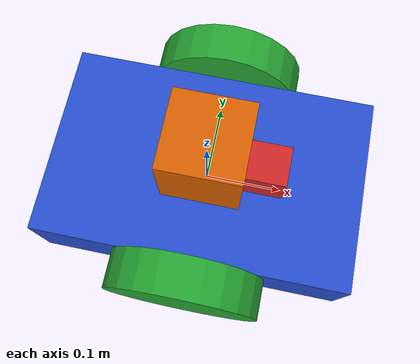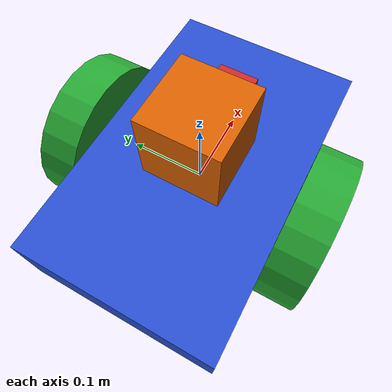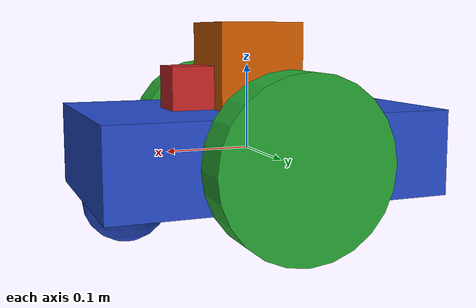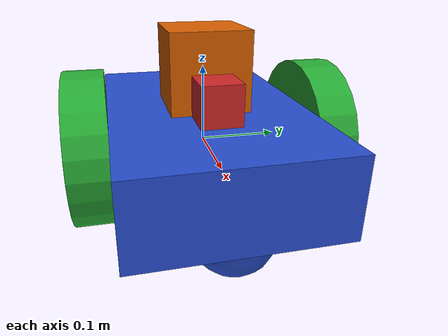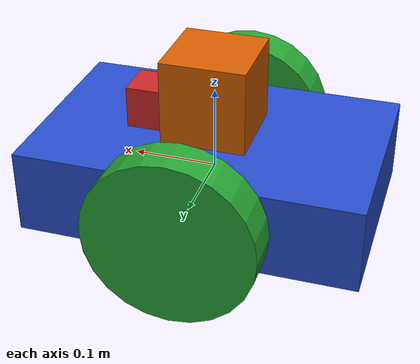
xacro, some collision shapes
<?xml version='1.0'?>

<robot name="my_robot" xmlns:xacro="http://www.ros.org/wiki/xacro">
  <xacro:include filename="$(find my_robot)/urdf/my_robot.gazebo" />
  <link name="robot_footprint"></link>

  <joint name="robot_footprint_joint" type="fixed">
    <origin xyz="0 0 0" rpy="0 0 0" />
    <parent link="robot_footprint"/>
    <child link="chassis" />
  </joint>

  <link name='chassis'>
    <pose>0 0 0.1 0 0 0</pose>

    <inertial>
      <mass value="15.0"/>
      <origin xyz="0.0 0 0" rpy=" 0 0 0"/>
      <inertia
          ixx="0.1" ixy="0" ixz="0"
          iyy="0.1" iyz="0"
          izz="0.1"
      />
    </inertial>

    <collision name='collision'>
      <origin xyz="0 0 0" rpy=" 0 0 0"/>
      <geometry>
        <box size=".4 .25 .1"/>
      </geometry>
    </collision>

    <visual name='chassis_visual'>
      <origin xyz="0 0 0" rpy=" 0 0 0"/>
      <geometry>
        <box size=".4 .25 .1"/>
      </geometry>
    </visual>

    <collision name='back_caster_collision'>
      <origin xyz="-0.15 0 -0.05" rpy=" 0 0 0"/>
      <geometry>
        <sphere radius="0.0499"/>
      </geometry>
    </collision>

    <visual name='back_caster_visual'>
      <origin xyz="-0.15 0 -0.05" rpy=" 0 0 0"/>
      <geometry>
        <sphere radius="0.05"/>
      </geometry>
    </visual>

    <collision name='front_caster_collision'>
      <origin xyz="0.15 0 -0.05" rpy=" 0 0 0"/>
      <geometry>
        <sphere radius="0.0499"/>
      </geometry>
    </collision>

    <visual name='front_caster_visual'>
      <origin xyz="0.15 0 -0.05" rpy=" 0 0 0"/>
      <geometry>
        <sphere radius="0.05"/>
      </geometry>
    </visual>

  </link>

  <!--  link =  left_wheel -->
  <link name='left_wheel'>
    <pose>0 0 0 0 0 0</pose>

    <inertial>
      <mass value="5.0"/>
      <origin xyz="0.0 0 0" rpy=" 0 1.5707 1.5707"/>
      <inertia
          ixx="0.1" ixy="0" ixz="0"
          iyy="0.1" iyz="0"
          izz="0.1"
      />
    </inertial>

    <collision name='left_wheel_collision'>
      <origin xyz="0 0 0" rpy=" 0 1.5707 1.5707"/>
      <geometry>
        <cylinder radius="0.1" length="0.05"/>
      </geometry>
    </collision>

    <visual name='left_wheel_visual'>
      <origin xyz="0 0 0" rpy=" 0 1.5707 1.5707"/>
      <geometry>
        <cylinder radius="0.1" length="0.05"/>
      </geometry>
    </visual>

  </link>

  <!-- link =  right_wheel  -->
  <link name='right_wheel'>
    <pose>0 0 0 0 0 0</pose>

    <inertial>
      <mass value="5.0"/>
      <origin xyz="0.0 0 0" rpy=" 0 1.5707 1.5707"/>
      <inertia
          ixx="0.1" ixy="0" ixz="0"
          iyy="0.1" iyz="0"
          izz="0.1"
      />
    </inertial>

    <collision name='right_wheel_collision'>
      <origin xyz="0 0 0" rpy=" 0 1.5707 1.5707"/>
      <geometry>
        <cylinder radius="0.1" length="0.05"/>
      </geometry>
    </collision>

    <visual name='right_wheel_visual'>
      <origin xyz="0 0 0" rpy=" 0 1.5707 1.5707"/>
      <geometry>
        <cylinder radius="0.1" length="0.05"/>
      </geometry>

    </visual>

  </link>

  <!-- joint =  left_wheel_hinge -->
  <joint type="continuous" name="left_wheel_hinge">
    <origin xyz="0 0.15 0" rpy="0 0 0"/>
    <child link="left_wheel"/>
    <parent link="chassis"/>
    <axis xyz="0 1 0" rpy="0 0 0"/>
    <limit effort="10000" velocity="1000"/>
    <dynamics damping="1.0" friction="1.0"/>
  </joint>

  <!-- joint =  right_wheel_hinge -->
  <joint type="continuous" name="right_wheel_hinge">
    <origin xyz="0 -0.15 0" rpy="0 0 0"/>
    <child link="right_wheel"/>
    <parent link="chassis"/>
    <axis xyz="0 1 0" rpy="0 0 0"/>
    <limit effort="10000" velocity="1000"/>
    <dynamics damping="1.0" friction="1.0"/>
  </joint>

<!-- rgb-d camera -->
<link name="camera_link_optical">
     <visual>
      <origin xyz="0 0 0" rpy="0 0 0"/>
       <geometry>
	<box size=".05 .05 .05"/>
      </geometry>
    </visual>

    <inertial>
      <mass value="0.1"/>
      <origin xyz="0 0 0" rpy=" 0 0 0"/>
      <inertia
	  ixx="0.000001" ixy="0" ixz="0"
	  iyy="0.000001" iyz="0"
	  izz="0.000001"
      />
    </inertial>

    <collision>
      <origin xyz="0 0 0" rpy="0 0 0"/>
       <geometry>
	<box size=".05 .05 .05"/>
      </geometry>
    </collision>

</link>
  <joint name="camera_link_optical_joint" type="fixed">
    <origin xyz="0.075 0 0.075" rpy="-1.5707 0  -1.5707" />
    <child link="camera_link_optical"/>
    <parent link="chassis"/>

  </joint>

  <!-- link =  hokuyo -->
  <link name='hokuyo'>
    <pose>0 0 0 0 0 0</pose>

    <inertial>
      <mass value="1e-5"/>
      <origin xyz="0.0 0 0" rpy=" 0 0 0"/>
      <inertia
          ixx="1e-6" ixy="0" ixz="0"
          iyy="1e-6" iyz="0"
          izz="1e-6"
      />
    </inertial>

    <collision name='hokuyo_collision'>
      <origin xyz="0 0 0" rpy=" 0 0 0"/>
      <geometry>
        <box size = "0.1 0.1 0.1"/>
      </geometry>
    </collision>

    <visual name='hokuyo_visual'>
      <origin xyz="0 0 0" rpy="0 0 0"/>
      <geometry>
        <mesh filename = "package://my_robot/meshes/hokuyo.dae"/>
      </geometry>
    </visual>
  </link>

  <!-- joint =  hokuyo_joint lidar  -->
  <joint type="fixed" name="hokuyo_joint">
    <origin xyz="0.0 0.0 0.1" rpy="0 0 0"/>
    <child link="hokuyo"/>
    <parent link="chassis"/>
    <axis xyz="0 1 0" rpy="0 0 0"/>
    <limit effort="10000" velocity="1000"/>
    <dynamics damping="1.0" friction="1.0"/>
  </joint>

  <gazebo reference="left_wheel">
    <material>Gazebo/Green</material>
  </gazebo>

  <gazebo reference="right_wheel">
    <material>Gazebo/Green</material>
  </gazebo>

  <gazebo reference="chassis">
    <material>Gazebo/BlueTransparentOverlay</material>
  </gazebo>

  <gazebo reference="camera_link_optical">
    <material>Gazebo/RedTransparent</material>
  </gazebo>

</robot>
